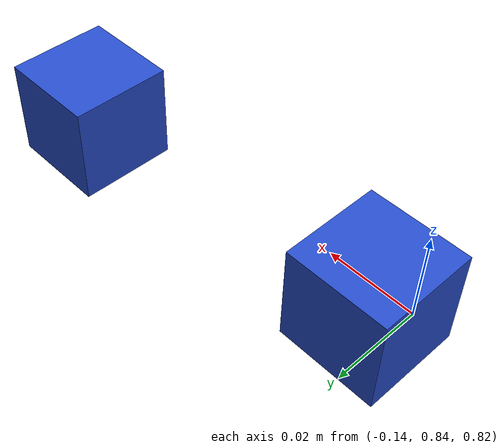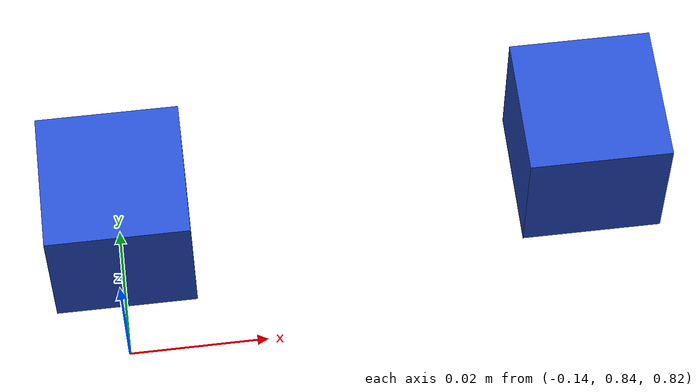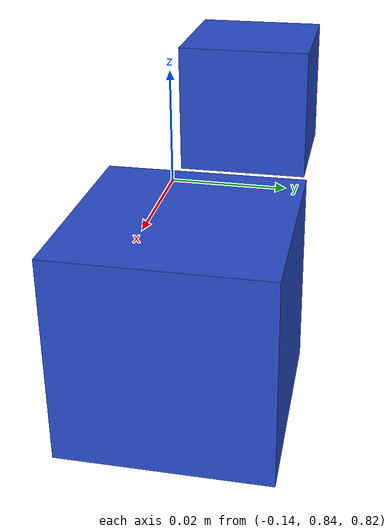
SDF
<sdf version="1.6">
 <world name="default">
  <model name="ground_plane">
   <static>1</static>
   <link name="link">
    <collision name="collision">
     <geometry><plane><normal>0 0 1</normal><size>100 100</size></plane></geometry>
     <surface><friction><ode><mu>100</mu><mu2>50</mu2></ode></friction></surface>
    </collision>
    <visual name="visual">
     <cast_shadows>0</cast_shadows>
     <geometry><plane><normal>0 0 1</normal><size>100 100</size></plane></geometry>
     <material>
      <script><uri>file://media/materials/scripts/gazebo.material</uri><name>Gazebo/Grey</name></script>
     </material>
    </visual>
   </link>
  </model>
  <model name="blue_box_0.02m_clone">
   <link name="link_0">
    <inertial>
     <mass>0.01</mass>
     <inertia>
      <ixx>0.000166667</ixx>
      <ixy>0</ixy>
      <ixz>0</ixz>
      <iyy>0.000166667</iyy>
      <iyz>0</iyz>
      <izz>0.000166667</izz>
     </inertia>
    </inertial>
    <visual name="visual">
     <geometry><box><size>0.02 0.02 0.02</size></box></geometry>
     <material>
      <lighting>1</lighting>
      <script><uri>file://media/materials/scripts/gazebo.material</uri><name>Gazebo/Blue</name></script>
      <shader type="normal_map_object_space"><normal_map>__default__</normal_map></shader>
      <ambient>0 0 1 1</ambient>
      <diffuse>0.7 0.7 0.7 1</diffuse>
      <specular>0.01 0.01 0.01 1</specular>
      <emissive>0 0 0 1</emissive>
     </material>
    </visual>
    <collision name="collision">
     <geometry><box><size>0.02 0.02 0.02</size></box></geometry>
     <surface>
      <friction>
       <ode><mu>1</mu><mu2>1</mu2><fdir1>0 0 0</fdir1><slip1>0</slip1><slip2>0</slip2></ode>
       <torsional>
        <coefficient>1</coefficient>
        <patch_radius>0</patch_radius>
        <surface_radius>0</surface_radius>
        <use_patch_radius>1</use_patch_radius>
        <ode><slip>0</slip></ode>
       </torsional>
      </friction>
      <bounce><restitution_coefficient>0</restitution_coefficient><threshold>1e+06</threshold></bounce>
      <contact>
       <collide_without_contact>0</collide_without_contact>
       <collide_without_contact_bitmask>1</collide_without_contact_bitmask>
       <collide_bitmask>1</collide_bitmask>
       <ode>
        <soft_cfm>0</soft_cfm>
        <soft_erp>0.2</soft_erp>
        <kp>1e+13</kp>
        <kd>1</kd>
        <max_vel>0.01</max_vel>
        <min_depth>0</min_depth>
       </ode>
       <bullet>
        <split_impulse>1</split_impulse>
        <split_impulse_penetration_threshold>-0.01</split_impulse_penetration_threshold>
        <soft_cfm>0</soft_cfm>
        <soft_erp>0.2</soft_erp>
        <kp>1e+13</kp>
        <kd>1</kd>
       </bullet>
      </contact>
     </surface>
    </collision>
   </link>
   <static>0</static>
   <pose>-0.072164 0.858395 0.836823 0 -0 0</pose>
  </model>
  <model name="blue_box_0.02m_clone1">
   <link name="link_0">
    <inertial>
     <mass>0.01</mass>
     <inertia>
      <ixx>0.000166667</ixx>
      <ixy>0</ixy>
      <ixz>0</ixz>
      <iyy>0.000166667</iyy>
      <iyz>0</iyz>
      <izz>0.000166667</izz>
     </inertia>
    </inertial>
    <visual name="visual">
     <geometry><box><size>0.02 0.02 0.02</size></box></geometry>
     <material>
      <lighting>1</lighting>
      <script><uri>file://media/materials/scripts/gazebo.material</uri><name>Gazebo/Blue</name></script>
      <shader type="normal_map_object_space"><normal_map>__default__</normal_map></shader>
      <ambient>0 0 1 1</ambient>
      <diffuse>0.7 0.7 0.7 1</diffuse>
      <specular>0.01 0.01 0.01 1</specular>
      <emissive>0 0 0 1</emissive>
     </material>
    </visual>
    <collision name="collision">
     <geometry><box><size>0.02 0.02 0.02</size></box></geometry>
     <surface>
      <friction>
       <ode><mu>1</mu><mu2>1</mu2><fdir1>0 0 0</fdir1><slip1>0</slip1><slip2>0</slip2></ode>
       <torsional>
        <coefficient>1</coefficient>
        <patch_radius>0</patch_radius>
        <surface_radius>0</surface_radius>
        <use_patch_radius>1</use_patch_radius>
        <ode><slip>0</slip></ode>
       </torsional>
      </friction>
      <bounce><restitution_coefficient>0</restitution_coefficient><threshold>1e+06</threshold></bounce>
      <contact>
       <collide_without_contact>0</collide_without_contact>
       <collide_without_contact_bitmask>1</collide_without_contact_bitmask>
       <collide_bitmask>1</collide_bitmask>
       <ode>
        <soft_cfm>0</soft_cfm>
        <soft_erp>0.2</soft_erp>
        <kp>1e+13</kp>
        <kd>1</kd>
        <max_vel>0.01</max_vel>
        <min_depth>0</min_depth>
       </ode>
       <bullet>
        <split_impulse>1</split_impulse>
        <split_impulse_penetration_threshold>-0.01</split_impulse_penetration_threshold>
        <soft_cfm>0</soft_cfm>
        <soft_erp>0.2</soft_erp>
        <kp>1e+13</kp>
        <kd>1</kd>
       </bullet>
      </contact>
     </surface>
    </collision>
   </link>
   <static>0</static>
   <pose>-0.072164 0.858395 0.836823 0 -0 0</pose>
  </model>
  <model name="blue_box_0.02m_clone_01">
   <link name="link_0">
    <inertial>
     <mass>0.01</mass>
     <inertia>
      <ixx>0.000166667</ixx>
      <ixy>0</ixy>
      <ixz>0</ixz>
      <iyy>0.000166667</iyy>
      <iyz>0</iyz>
      <izz>0.000166667</izz>
     </inertia>
    </inertial>
    <visual name="visual">
     <geometry><box><size>0.02 0.02 0.02</size></box></geometry>
     <material>
      <lighting>1</lighting>
      <script><uri>file://media/materials/scripts/gazebo.material</uri><name>Gazebo/Blue</name></script>
      <shader type="normal_map_object_space"><normal_map>__default__</normal_map></shader>
      <ambient>0 0 1 1</ambient>
      <diffuse>0.7 0.7 0.7 1</diffuse>
      <specular>0.01 0.01 0.01 1</specular>
      <emissive>0 0 0 1</emissive>
     </material>
    </visual>
    <collision name="collision">
     <geometry><box><size>0.02 0.02 0.02</size></box></geometry>
     <surface>
      <friction>
       <ode><mu>1</mu><mu2>1</mu2><fdir1>0 0 0</fdir1><slip1>0</slip1><slip2>0</slip2></ode>
       <torsional>
        <coefficient>1</coefficient>
        <patch_radius>0</patch_radius>
        <surface_radius>0</surface_radius>
        <use_patch_radius>1</use_patch_radius>
        <ode><slip>0</slip></ode>
       </torsional>
      </friction>
      <bounce><restitution_coefficient>0</restitution_coefficient><threshold>1e+06</threshold></bounce>
      <contact>
       <collide_without_contact>0</collide_without_contact>
       <collide_without_contact_bitmask>1</collide_without_contact_bitmask>
       <collide_bitmask>1</collide_bitmask>
       <ode>
        <soft_cfm>0</soft_cfm>
        <soft_erp>0.2</soft_erp>
        <kp>1e+13</kp>
        <kd>1</kd>
        <max_vel>0.01</max_vel>
        <min_depth>0</min_depth>
       </ode>
       <bullet>
        <split_impulse>1</split_impulse>
        <split_impulse_penetration_threshold>-0.01</split_impulse_penetration_threshold>
        <soft_cfm>0</soft_cfm>
        <soft_erp>0.2</soft_erp>
        <kp>1e+13</kp>
        <kd>1</kd>
       </bullet>
      </contact>
     </surface>
    </collision>
   </link>
   <static>0</static>
   <pose>-0.13959 0.85412 0.836823 0 -0 0</pose>
  </model>
 </world>
</sdf>
